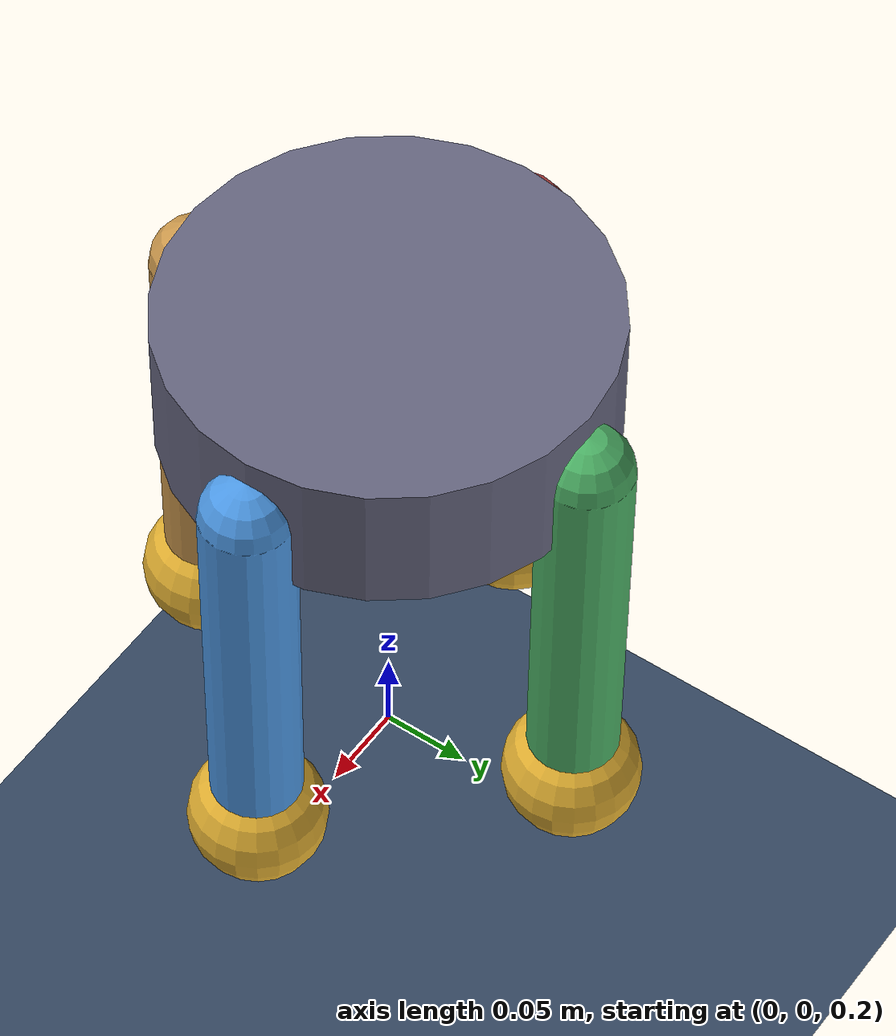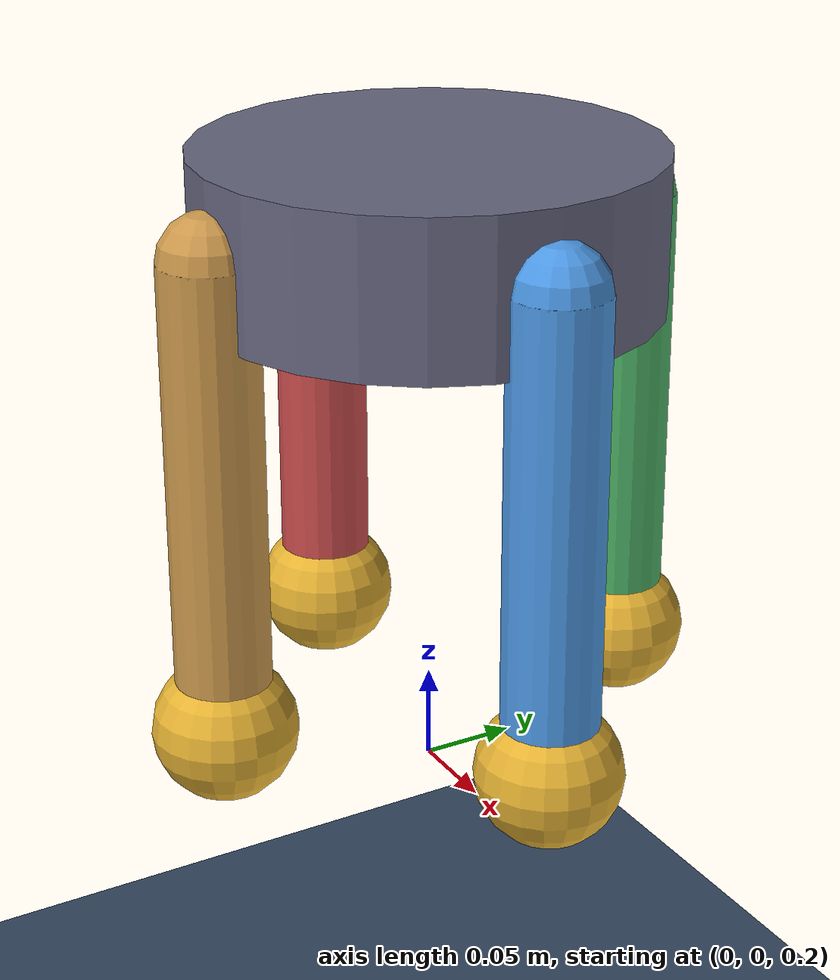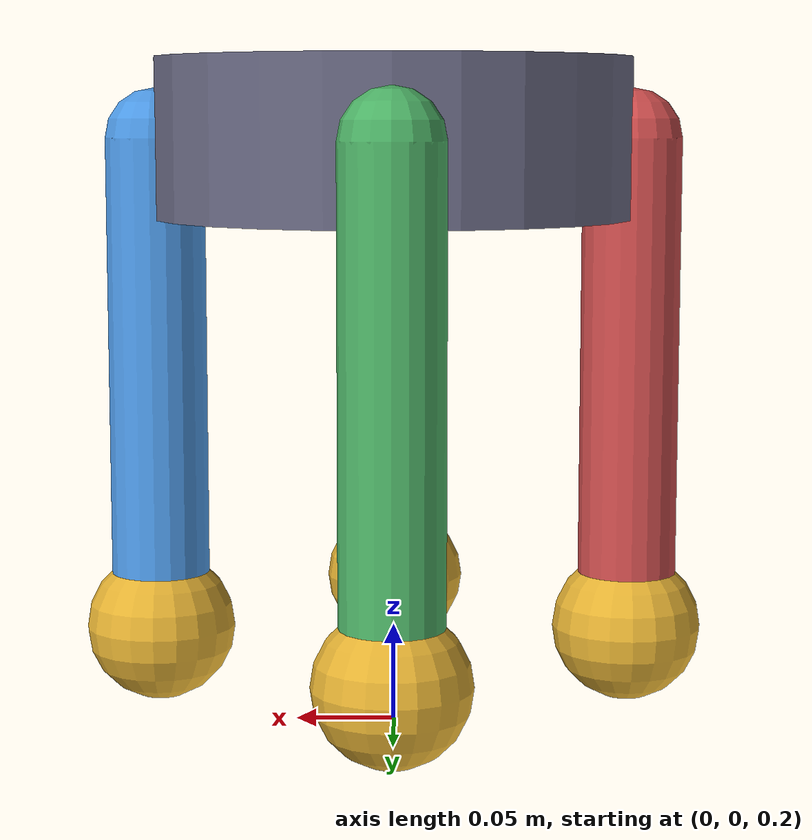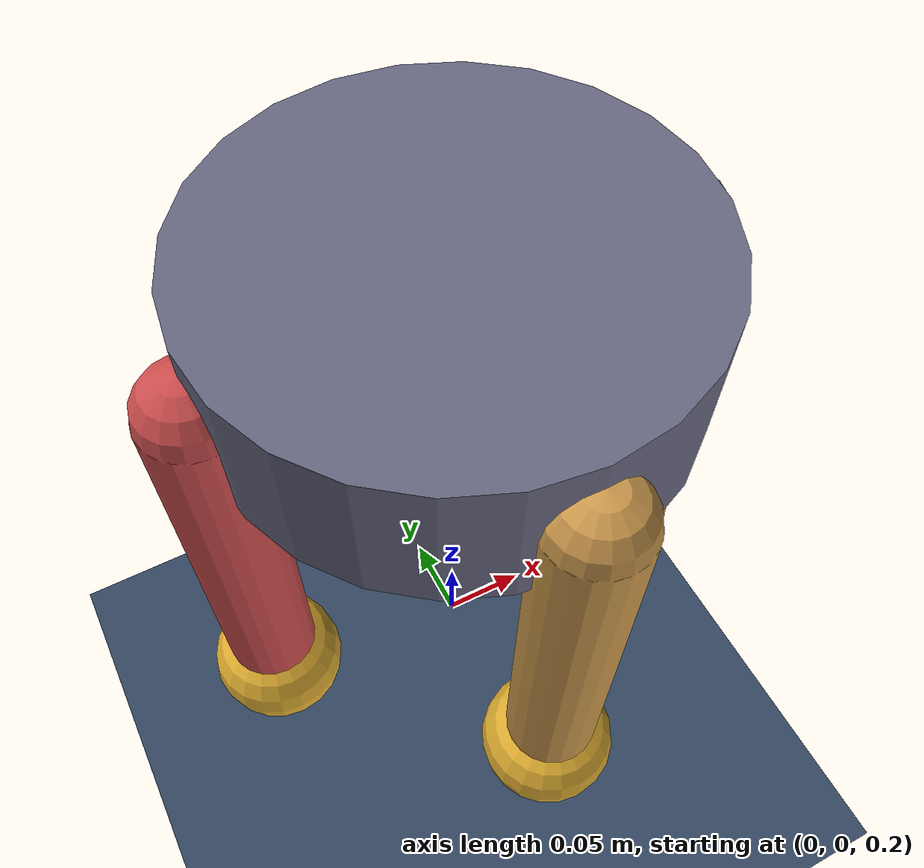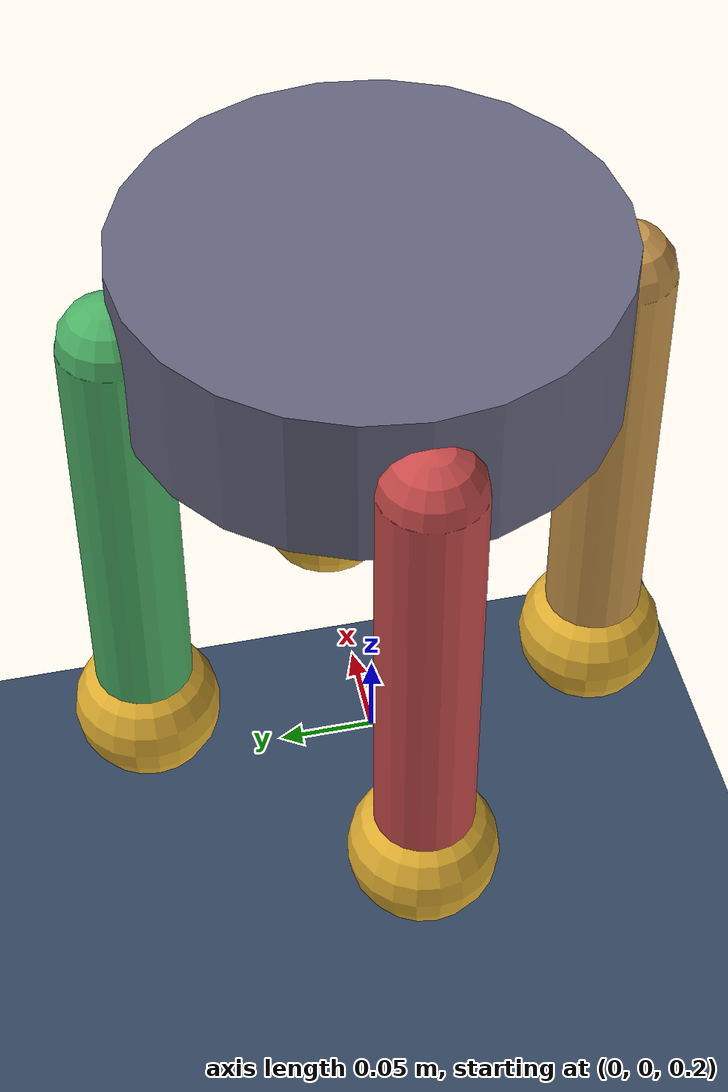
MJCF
<mujoco model="quadripod_robot">

  <!-- Physics settings -->
  <option timestep="0.005" gravity="0 0 -9.81"/>

  <!-- Visual settings (cosmetic only) -->
  <visual>
    <headlight diffuse="0.7 0.7 0.7" ambient="0.3 0.3 0.3" specular="0 0 0"/>
    <rgba haze="0.1 0.2 0.3 1"/>
  </visual>

  <!-- Textures and materials -->
  <asset>
    <texture type="skybox" builtin="gradient"
             rgb1="0.4 0.6 0.8" rgb2="0.05 0.05 0.1" width="512" height="512"/>
    <texture type="2d" name="floor_texture" builtin="checker"
             rgb1="0.25 0.35 0.45" rgb2="0.15 0.2 0.3" width="1000" height="1000"/>
    <material name="floor_material" texture="floor_texture" texrepeat="64 64"/>
  </asset>

  <!-- BODIES AND GEOMETRY                                              -->
  <worldbody>

    <light pos="0 0 3" dir="0 0 -1" diffuse="0.8 0.8 0.8"/>
    <geom name="floor" type="plane" size="100 100 0.1" material="floor_material"/>

    <!--
      TORSO — the central body of the robot.
      Free joint allows it to move and rotate in 3D.
      Positioned 0.5m above the floor.
    -->
    <body name="torso" pos="0 0 0.5">
      <freejoint name="root"/>
      <geom name="torso_geom"
            type="cylinder" size="0.12 0.04"
            rgba="0.4 0.4 0.5 1"/>

      <body name="leg1" pos="0.12 0 0">
        <joint name="hip1"
               type="hinge"
               axis="0 1 0"
               damping="4.0"/>
        <geom name="leg1_geom"
              type="capsule"
              fromto="0 0 0   0 0 -0.25"
              size="0.025"
              rgba="0.3 0.6 0.9 1"/>
        <body name="foot1" pos="0 0 -0.25">
          <geom name="foot1_geom"
                type="sphere" size="0.038"
                rgba="0.9 0.7 0.2 1"
                condim="3" friction="0.7 0.005 0.0001"/>
        </body>
      </body>

      <body name="leg2" pos="0 0.12 0">
        <joint name="hip2"
               type="hinge"
               axis="-1 0 0"
               damping="4.0"/>
        <geom name="leg2_geom"
              type="capsule"
              fromto="0 0 0   0 0 -0.25"
              size="0.025"
              rgba="0.3 0.7 0.4 1"/>
        <body name="foot2" pos="0 0 -0.25">
          <geom name="foot2_geom"
                type="sphere" size="0.038"
                rgba="0.9 0.7 0.2 1"
                condim="3" friction="0.7 0.005 0.0001"/>
        </body>
      </body>

      <body name="leg3" pos="-0.12 0 0">
        <joint name="hip3"
               type="hinge"
               axis="0 -1 0"
               damping="4.0"/>
        <geom name="leg3_geom"
              type="capsule"
              fromto="0 0 0   0 0 -0.25"
              size="0.025"
              rgba="0.8 0.3 0.3 1"/>
        <body name="foot3" pos="0 0 -0.25">
          <geom name="foot3_geom"
                type="sphere" size="0.038"
                rgba="0.9 0.7 0.2 1"
                condim="3" friction="0.7 0.005 0.0001"/>
        </body>
      </body>

      <body name="leg4" pos="0 -0.12 0">
        <joint name="hip4"
               type="hinge"
               axis="1 0 0"
               damping="4.0"/>
        <geom name="leg4_geom"
              type="capsule"
              fromto="0 0 0   0 0 -0.25"
              size="0.025"
              rgba="0.8 0.6 0.3 1"/>
        <body name="foot4" pos="0 0 -0.25">
          <geom name="foot4_geom"
                type="sphere" size="0.038"
                rgba="0.9 0.7 0.2 1"
                condim="3" friction="0.7 0.005 0.0001"/>
        </body>
      </body>

    </body>
  </worldbody>

  <!-- ACTUATORS                                                        -->
  <!-- Type: "position" servo — ctrl = DESIRED ANGLE (in radians).     -->
  <!-- kp        = stiffness (N·m per radian of error).                -->
  <!-- ctrlrange = min/max allowed target angle in radians.             -->
  <!-- Velocity damping is handled by joint "damping" above, NOT here. -->
  <actuator>
    <position name="servo_leg1" joint="hip1" kp="25" ctrllimited="true" ctrlrange="-1.5 0.8"/>
    <position name="servo_leg2" joint="hip2" kp="25" ctrllimited="true" ctrlrange="-1.5 0.8"/>
    <position name="servo_leg3" joint="hip3" kp="25" ctrllimited="true" ctrlrange="-1.5 0.8"/>
    <position name="servo_leg4" joint="hip4" kp="25" ctrllimited="true" ctrlrange="-1.5 0.8"/>
  </actuator>

</mujoco>
